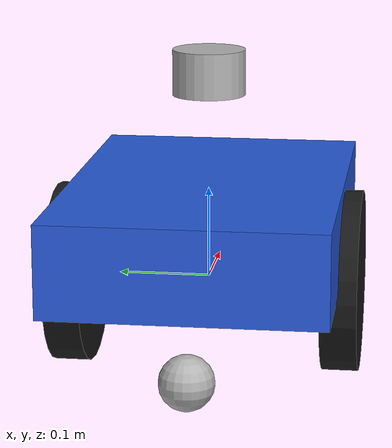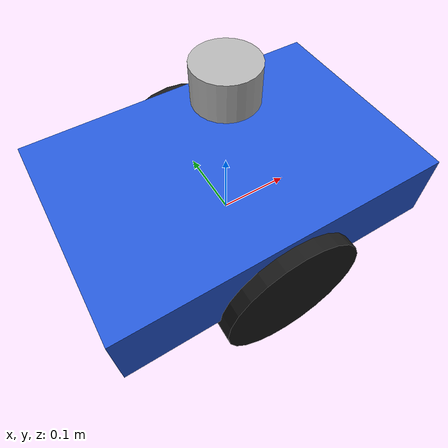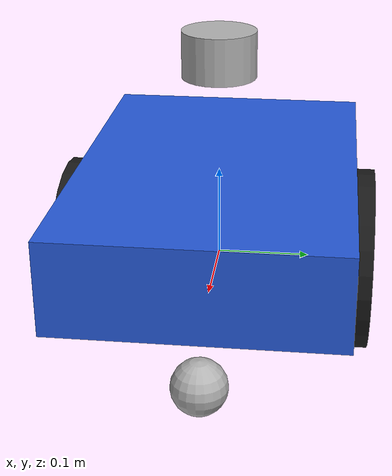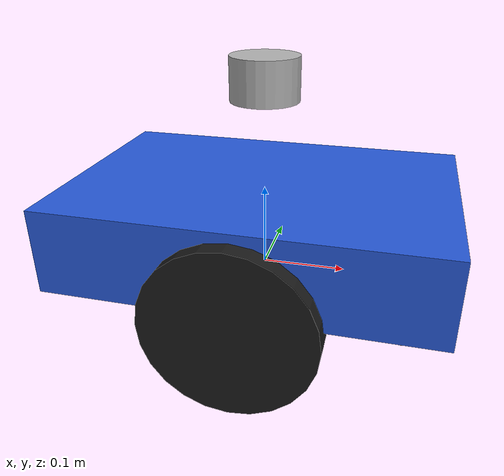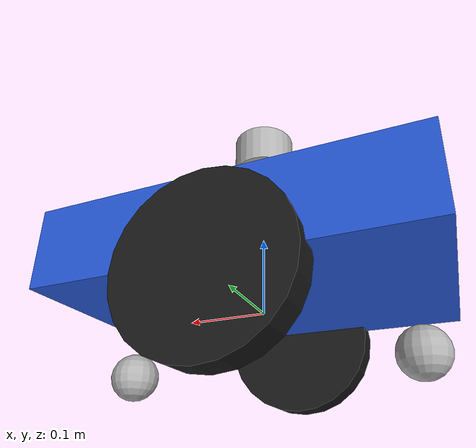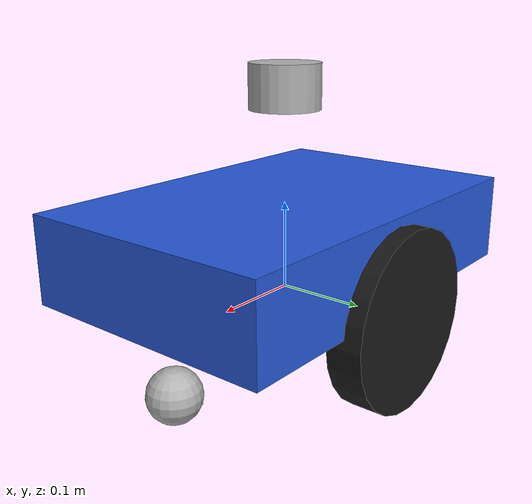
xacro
<?xml version="1.0"?>
<robot name="amr" xmlns:xacro="http://www.ros.org/wiki/xacro">

  <!-- Basic dimensions          -->
  <xacro:property name="body_length" value="0.45"/>
  <xacro:property name="body_width" value="0.30"/>
  <xacro:property name="body_height" value="0.10"/>

  <xacro:property name="wheel_radius" value="0.10"/>
  <xacro:property name="wheel_width" value="0.04"/>
  <xacro:property name="wheel_separation" value="0.30"/>
  <xacro:property name="wheel_y" value="${wheel_separation / 2.0}"/>

  <xacro:property name="caster_radius" value="0.03"/>
  <xacro:property name="caster_x" value="-0.18"/>
  <xacro:property name="caster_radius" value="0.03"/>
  <xacro:property name="rear_caster_x" value="-0.18"/>
  <xacro:property name="front_caster_x" value="0.18"/>
  <xacro:property name="caster_z" value="-0.035"/>

  <!-- Lidar Dimensions-->
  <xacro:property name="lidar_radius" value="0.04"/>
  <xacro:property name="lidar_height" value="0.05"/>
  <xacro:property name="lidar_x" value="0.0"/>
  <xacro:property name="lidar_y" value="0.0"/>
  <xacro:property name="lidar_z" value="0.23"/>

  <!-- Body sits above axle plane -->
  <xacro:property name="body_z" value="0.06"/>

  <!-- Masses                    -->
  <xacro:property name="body_mass" value="8.0"/>
  <xacro:property name="wheel_mass" value="0.6"/>
  <xacro:property name="caster_mass" value="0.2"/>

  <!-- Materials                 -->
  <material name="blue">
    <color rgba="0.15 0.35 0.85 1.0"/>
  </material>

  <material name="black">
    <color rgba="0.1 0.1 0.1 1.0"/>
  </material>

  <material name="gray">
    <color rgba="0.7 0.7 0.7 1.0"/>
  </material>

  <!-- Root frames               -->

  <!-- base_link is the axle-height robot frame -->
  <link name="base_link"/>

  <!-- Chassis body              -->
  <link name="body_link">
    <inertial>
      <origin xyz="0 0 ${body_z}" rpy="0 0 0"/>
      <mass value="${body_mass}"/>
      <inertia
        ixx="0.08" ixy="0.0" ixz="0.0"
        iyy="0.18" iyz="0.0"
        izz="0.22"/>
    </inertial>

    <visual>
      <origin xyz="0 0 ${body_z}" rpy="0 0 0"/>
      <geometry>
        <box size="${body_length} ${body_width} ${body_height}"/>
      </geometry>
      <material name="blue"/>
    </visual>

    <collision>
      <origin xyz="0 0 ${body_z}" rpy="0 0 0"/>
      <geometry>
        <box size="${body_length} ${body_width} ${body_height - 0.02}"/>
      </geometry>
    </collision>
  </link>

  <joint name="base_link_to_body" type="fixed">
    <parent link="base_link"/>
    <child link="body_link"/>
    <origin xyz="0 0 0" rpy="0 0 0"/>
  </joint>

  <!-- Left wheel                -->
  <link name="left_wheel_link">
    <inertial>
      <origin xyz="0 0 0" rpy="0 0 0"/>
      <mass value="${wheel_mass}"/>
      <inertia
        ixx="0.002" ixy="0.0" ixz="0.0"
        iyy="0.001" iyz="0.0"
        izz="0.002"/>
    </inertial>

    <visual>
      <origin xyz="0 0 0" rpy="1.5707963 0 0"/>
      <geometry>
        <cylinder radius="${wheel_radius}" length="${wheel_width}"/>
      </geometry>
      <material name="black"/>
    </visual>

    <collision>
      <origin xyz="0 0 0" rpy="1.5707963 0 0"/>
      <geometry>
        <cylinder radius="${wheel_radius}" length="${wheel_width}"/>
      </geometry>
    </collision>
  </link>

  <joint name="left_wheel_joint" type="continuous">
    <parent link="base_link"/>
    <child link="left_wheel_link"/>
    <origin xyz="0 ${wheel_y} 0" rpy="0 0 0"/>
    <axis xyz="0 1 0"/>
    <limit effort="20.0" velocity="30.0"/>
    <dynamics damping="0.05" friction="0.0"/>
  </joint>

  <!-- Lidar                     -->

  <link name="lidar_link">
    <inertial>
      <origin xyz="0 0 0" rpy="0 0 0"/>
      <mass value="0.2"/>
      <inertia
        ixx="0.0001" ixy="0.0" ixz="0.0"
        iyy="0.0001" iyz="0.0"
        izz="0.0001"/>
    </inertial>

    <visual>
      <origin xyz="0 0 0" rpy="0 0 0"/>
      <geometry>
        <cylinder radius="${lidar_radius}" length="${lidar_height}"/>
      </geometry>
      <material name="gray"/>
    </visual>

  </link>

  <joint name="lidar_joint" type="fixed">
    <parent link="base_link"/>
    <child link="lidar_link"/>
    <origin xyz="${lidar_x} ${lidar_y} ${lidar_z}" rpy="0 0 0"/>
  </joint>

  <!-- Right wheel               -->
  <link name="right_wheel_link">
    <inertial>
      <origin xyz="0 0 0" rpy="0 0 0"/>
      <mass value="${wheel_mass}"/>
      <inertia
        ixx="0.002" ixy="0.0" ixz="0.0"
        iyy="0.001" iyz="0.0"
        izz="0.002"/>
    </inertial>

    <visual>
      <origin xyz="0 0 0" rpy="1.5707963 0 0"/>
      <geometry>
        <cylinder radius="${wheel_radius}" length="${wheel_width}"/>
      </geometry>
      <material name="black"/>
    </visual>

    <collision>
      <origin xyz="0 0 0" rpy="1.5707963 0 0"/>
      <geometry>
        <cylinder radius="${wheel_radius}" length="${wheel_width}"/>
      </geometry>
    </collision>
  </link>

  <joint name="right_wheel_joint" type="continuous">
    <parent link="base_link"/>
    <child link="right_wheel_link"/>
    <origin xyz="0 -${wheel_y} 0" rpy="0 0 0"/>
    <axis xyz="0 1 0"/>
    <limit effort="20.0" velocity="30.0"/>
    <dynamics damping="0.05" friction="0.0"/>
  </joint>

  <!-- Rear + Front caster       -->
  <link name="rear_caster_link">
    <inertial>
      <origin xyz="0 0 -${caster_radius}" rpy="0 0 0"/>
      <mass value="${caster_mass}"/>
      <inertia
        ixx="0.0002" ixy="0.0" ixz="0.0"
        iyy="0.0002" iyz="0.0"
        izz="0.0002"/>
    </inertial>

    <!-- Sphere is offset downward inside the link -->
    <visual>
      <origin xyz="0 0 -${caster_radius}" rpy="0 0 0"/>
      <geometry>
        <sphere radius="${caster_radius}"/>
      </geometry>
      <material name="gray"/>
    </visual>

    <collision>
      <origin xyz="0 0 -${caster_radius}" rpy="0 0 0"/>
      <geometry>
        <sphere radius="${caster_radius}"/>
      </geometry>
    </collision>
  </link>

  <link name="front_caster_link">
  <inertial>
    <origin xyz="0 0 -${caster_radius}" rpy="0 0 0"/>
    <mass value="${caster_mass}"/>
    <inertia
      ixx="0.0002" ixy="0.0" ixz="0.0"
      iyy="0.0002" iyz="0.0"
      izz="0.0002"/>
  </inertial>

  <visual>
    <origin xyz="0 0 -${caster_radius}" rpy="0 0 0"/>
    <geometry>
      <sphere radius="${caster_radius}"/>
    </geometry>
    <material name="gray"/>
  </visual>

  <collision>
    <origin xyz="0 0 -${caster_radius}" rpy="0 0 0"/>
    <geometry>
      <sphere radius="${caster_radius}"/>
    </geometry>
  </collision>
</link>

  <!-- Place caster link origin on the axle plane -->
  <joint name="rear_caster_joint" type="fixed">
    <parent link="base_link"/>
    <child link="rear_caster_link"/>
    <origin xyz="${rear_caster_x} 0 ${caster_z}" rpy="0 0 0"/>
  </joint>

  <joint name="front_caster_joint" type="fixed">
    <parent link="base_link"/>
    <child link="front_caster_link"/>
    <origin xyz="${front_caster_x} 0 ${caster_z}" rpy="0 0 0"/>
  </joint>

  <!-- ros2_control              -->
  <ros2_control name="GazeboSystem" type="system">
    <hardware>
      <plugin>gazebo_ros2_control/GazeboSystem</plugin>
    </hardware>

    <joint name="left_wheel_joint">
      <command_interface name="velocity"/>
      <state_interface name="position"/>
      <state_interface name="velocity"/>
    </joint>

    <joint name="right_wheel_joint">
      <command_interface name="velocity"/>
      <state_interface name="position"/>
      <state_interface name="velocity"/>
    </joint>
  </ros2_control>

  <!-- Gazebo surface settings   -->
  <gazebo reference="left_wheel_link">
    <mu1>1.5</mu1>
    <mu2>1.5</mu2>
  </gazebo>

  <gazebo reference="right_wheel_link">
    <mu1>1.5</mu1>
    <mu2>1.5</mu2>
  </gazebo>

  <gazebo reference="rear_caster_link">
    <mu1>0.0</mu1>
    <mu2>0.0</mu2>
  </gazebo>

  <gazebo reference="front_caster_link">
    <mu1>0.0</mu1>
    <mu2>0.0</mu2>
  </gazebo>

  <gazebo>
    <plugin name="gazebo_ros2_control" filename="libgazebo_ros2_control.so">
      <parameters>$(find amr_control)/config/controllers.yaml</parameters>
    </plugin>
  </gazebo>

 <!-- Lidar Plugin -->
  <gazebo reference="lidar_link">
    <sensor name="lidar_sensor" type="ray">
      <pose>0 0 0 0 0 0</pose>
      <visualize>true</visualize>
      <update_rate>10</update_rate>

      <ray>
        <scan>
          <horizontal>
            <samples>360</samples>
            <resolution>1</resolution>
            <min_angle>-3.14159</min_angle>
            <max_angle>3.14159</max_angle>
          </horizontal>
        </scan>
        <range>
          <min>0.29</min>
          <max>8.0</max>
          <resolution>0.01</resolution>
        </range>
      </ray>

      <plugin name="gazebo_ros_laser_controller" filename="libgazebo_ros_ray_sensor.so">
        <ros>
          <remapping>~/out:=/scan</remapping>
        </ros>
        <output_type>sensor_msgs/LaserScan</output_type>
        <frame_name>lidar_link</frame_name>
      </plugin>
    </sensor>
  </gazebo>

</robot>
